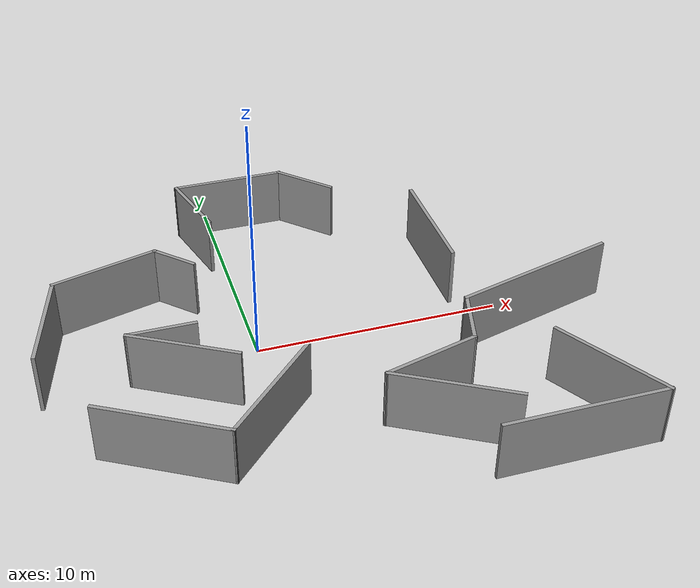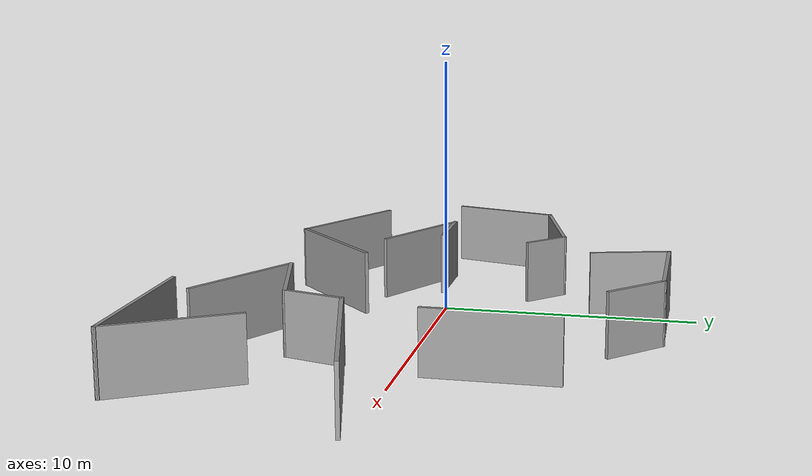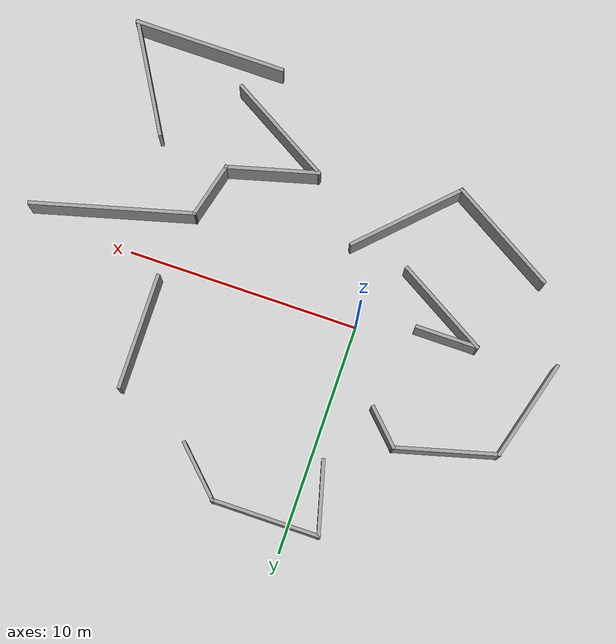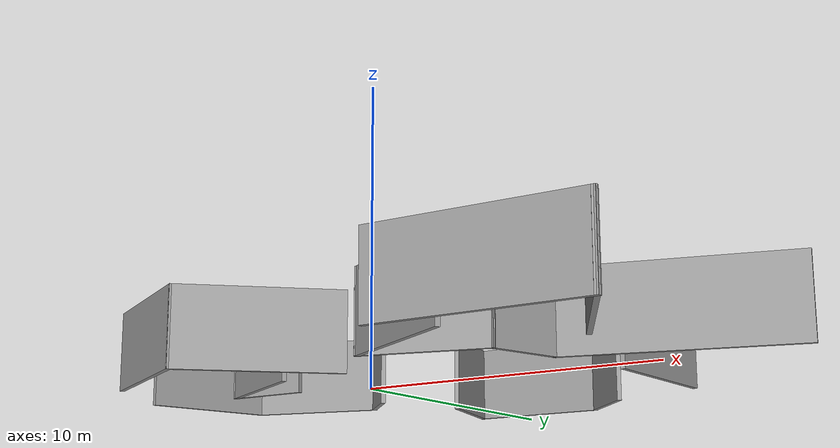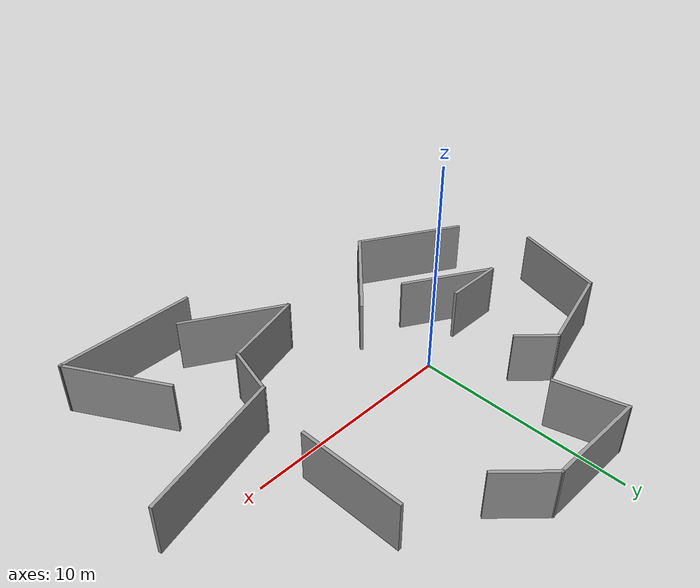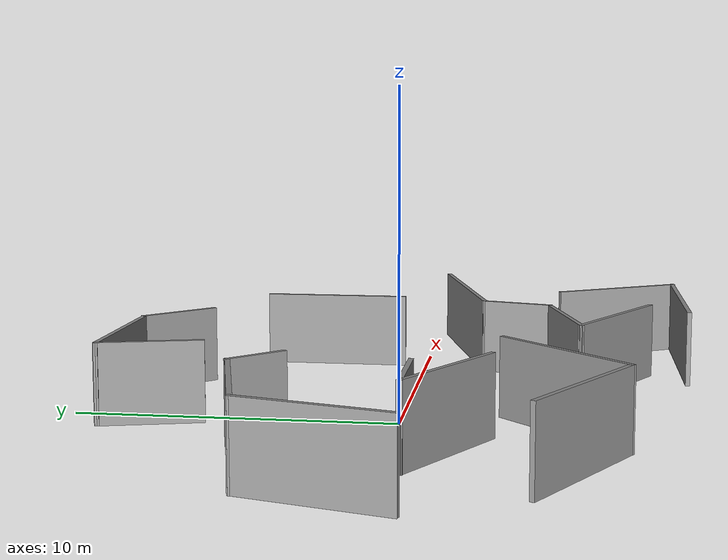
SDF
<?xml version='1.0'?>
<sdf version='1.7'>
  <model name='khong_gian_gazebo'>
    <pose>3.00618 -0.093238 0 0 -0 0</pose>
    <link name='Wall_0'>
      <collision name='Wall_0_Collision'>
        <geometry>
          <box>
            <size>5.25 0.15 2.5</size>
          </box>
        </geometry>
        <pose>0 0 1.25 0 -0 0</pose>
      </collision>
      <visual name='Wall_0_Visual'>
        <pose>0 0 1.25 0 -0 0</pose>
        <geometry>
          <box>
            <size>5.25 0.15 2.5</size>
          </box>
        </geometry>
        <material>
          <script>
            <uri>file://media/materials/scripts/gazebo.material</uri>
            <name>Gazebo/Grey</name>
          </script>
          <ambient>1 1 1 1</ambient>
        </material>
        <meta>
          <layer>0</layer>
        </meta>
      </visual>
      <pose>-3.5793 -4.72989 0 0 -0 -2.35619</pose>
    </link>
    <link name='Wall_1'>
      <collision name='Wall_1_Collision'>
        <geometry>
          <box>
            <size>5.25 0.15 2.5</size>
          </box>
        </geometry>
        <pose>0 0 1.25 0 -0 0</pose>
      </collision>
      <visual name='Wall_1_Visual'>
        <pose>0 0 1.25 0 -0 0</pose>
        <geometry>
          <box>
            <size>5.25 0.15 2.5</size>
          </box>
        </geometry>
        <material>
          <script>
            <uri>file://media/materials/scripts/gazebo.material</uri>
            <name>Gazebo/Grey</name>
          </script>
          <ambient>1 1 1 1</ambient>
        </material>
        <meta>
          <layer>0</layer>
        </meta>
      </visual>
      <pose>-7.59079 -5.25801 0 0 -0 2.61799</pose>
    </link>
    <link name='Wall_10'>
      <collision name='Wall_10_Collision'>
        <geometry>
          <box>
            <size>5 0.15 2.5</size>
          </box>
        </geometry>
        <pose>0 0 1.25 0 -0 0</pose>
      </collision>
      <visual name='Wall_10_Visual'>
        <pose>0 0 1.25 0 -0 0</pose>
        <geometry>
          <box>
            <size>5 0.15 2.5</size>
          </box>
        </geometry>
        <material>
          <script>
            <uri>file://media/materials/scripts/gazebo.material</uri>
            <name>Gazebo/Grey</name>
          </script>
          <ambient>1 1 1 1</ambient>
        </material>
        <meta>
          <layer>0</layer>
        </meta>
      </visual>
      <pose>5.37652 3.34963 0 0 -0 1.5708</pose>
    </link>
    <link name='Wall_12'>
      <collision name='Wall_12_Collision'>
        <geometry>
          <box>
            <size>2.75 0.15 2.5</size>
          </box>
        </geometry>
        <pose>0 0 1.25 0 -0 0</pose>
      </collision>
      <visual name='Wall_12_Visual'>
        <pose>0 0 1.25 0 -0 0</pose>
        <geometry>
          <box>
            <size>2.75 0.15 2.5</size>
          </box>
        </geometry>
        <material>
          <script>
            <uri>file://media/materials/scripts/gazebo.material</uri>
            <name>Gazebo/Grey</name>
          </script>
          <ambient>1 1 1 1</ambient>
        </material>
        <meta>
          <layer>0</layer>
        </meta>
      </visual>
      <pose>1.17273 7.99661 0 0 -0 2.35619</pose>
    </link>
    <link name='Wall_13'>
      <collision name='Wall_13_Collision'>
        <geometry>
          <box>
            <size>4.75 0.15 2.5</size>
          </box>
        </geometry>
        <pose>0 0 1.25 0 -0 0</pose>
      </collision>
      <visual name='Wall_13_Visual'>
        <pose>0 0 1.25 0 -0 0</pose>
        <geometry>
          <box>
            <size>4.75 0.15 2.5</size>
          </box>
        </geometry>
        <material>
          <script>
            <uri>file://media/materials/scripts/gazebo.material</uri>
            <name>Gazebo/Grey</name>
          </script>
          <ambient>1 1 1 1</ambient>
        </material>
        <meta>
          <layer>0</layer>
        </meta>
      </visual>
      <pose>-2.04651 8.91585 0 0 -0 3.14159</pose>
    </link>
    <link name='Wall_14'>
      <collision name='Wall_14_Collision'>
        <geometry>
          <box>
            <size>3.25 0.15 2.5</size>
          </box>
        </geometry>
        <pose>0 0 1.25 0 -0 0</pose>
      </collision>
      <visual name='Wall_14_Visual'>
        <pose>0 0 1.25 0 -0 0</pose>
        <geometry>
          <box>
            <size>3.25 0.15 2.5</size>
          </box>
        </geometry>
        <material>
          <script>
            <uri>file://media/materials/scripts/gazebo.material</uri>
            <name>Gazebo/Grey</name>
          </script>
          <ambient>1 1 1 1</ambient>
        </material>
        <meta>
          <layer>0</layer>
        </meta>
      </visual>
      <pose>-3.94534 7.41866 0 0 -0 -1.309</pose>
    </link>
    <link name='Wall_16'>
      <collision name='Wall_16_Collision'>
        <geometry>
          <box>
            <size>7 0.15 2.5</size>
          </box>
        </geometry>
        <pose>0 0 1.25 0 -0 0</pose>
      </collision>
      <visual name='Wall_16_Visual'>
        <pose>0 0 1.25 0 -0 0</pose>
        <geometry>
          <box>
            <size>7 0.15 2.5</size>
          </box>
        </geometry>
        <material>
          <script>
            <uri>file://media/materials/scripts/gazebo.material</uri>
            <name>Gazebo/Grey</name>
          </script>
          <ambient>1 1 1 1</ambient>
        </material>
        <meta>
          <layer>0</layer>
        </meta>
      </visual>
      <pose>8.10531 -1.14149 0 0 -0 -2.87979</pose>
    </link>
    <link name='Wall_17'>
      <collision name='Wall_17_Collision'>
        <geometry>
          <box>
            <size>2.5 0.15 2.5</size>
          </box>
        </geometry>
        <pose>0 0 1.25 0 -0 0</pose>
      </collision>
      <visual name='Wall_17_Visual'>
        <pose>0 0 1.25 0 -0 0</pose>
        <geometry>
          <box>
            <size>2.5 0.15 2.5</size>
          </box>
        </geometry>
        <material>
          <script>
            <uri>file://media/materials/scripts/gazebo.material</uri>
            <name>Gazebo/Grey</name>
          </script>
          <ambient>1 1 1 1</ambient>
        </material>
        <meta>
          <layer>0</layer>
        </meta>
      </visual>
      <pose>4.4929 -3.16291 0 0 -0 -1.8326</pose>
    </link>
    <link name='Wall_18'>
      <collision name='Wall_18_Collision'>
        <geometry>
          <box>
            <size>4 0.15 2.5</size>
          </box>
        </geometry>
        <pose>0 0 1.25 0 -0 0</pose>
      </collision>
      <visual name='Wall_18_Visual'>
        <pose>0 0 1.25 0 -0 0</pose>
        <geometry>
          <box>
            <size>4 0.15 2.5</size>
          </box>
        </geometry>
        <material>
          <script>
            <uri>file://media/materials/scripts/gazebo.material</uri>
            <name>Gazebo/Grey</name>
          </script>
          <ambient>1 1 1 1</ambient>
        </material>
        <meta>
          <layer>0</layer>
        </meta>
      </visual>
      <pose>2.32938 -4.7961 0 0 -0 -2.87979</pose>
    </link>
    <link name='Wall_19'>
      <collision name='Wall_19_Collision'>
        <geometry>
          <box>
            <size>5 0.15 2.5</size>
          </box>
        </geometry>
        <pose>0 0 1.25 0 -0 0</pose>
      </collision>
      <visual name='Wall_19_Visual'>
        <pose>0 0 1.25 0 -0 0</pose>
        <geometry>
          <box>
            <size>5 0.15 2.5</size>
          </box>
        </geometry>
        <material>
          <script>
            <uri>file://media/materials/scripts/gazebo.material</uri>
            <name>Gazebo/Grey</name>
          </script>
          <ambient>1 1 1 1</ambient>
        </material>
        <meta>
          <layer>0</layer>
        </meta>
      </visual>
      <pose>2.57009 -6.50682 0 0 -0 -0.523599</pose>
    </link>
    <link name='Wall_21'>
      <collision name='Wall_21_Collision'>
        <geometry>
          <box>
            <size>5 0.15 2.5</size>
          </box>
        </geometry>
        <pose>0 0 1.25 0 -0 0</pose>
      </collision>
      <visual name='Wall_21_Visual'>
        <pose>0 0 1.25 0 -0 0</pose>
        <geometry>
          <box>
            <size>5 0.15 2.5</size>
          </box>
        </geometry>
        <material>
          <script>
            <uri>file://media/materials/scripts/gazebo.material</uri>
            <name>Gazebo/Grey</name>
          </script>
          <ambient>1 1 1 1</ambient>
        </material>
        <meta>
          <layer>0</layer>
        </meta>
      </visual>
      <pose>8.4626 -6.81935 0 0 -0 -1.0472</pose>
    </link>
    <link name='Wall_22'>
      <collision name='Wall_22_Collision'>
        <geometry>
          <box>
            <size>6.5 0.15 2.5</size>
          </box>
        </geometry>
        <pose>0 0 1.25 0 -0 0</pose>
      </collision>
      <visual name='Wall_22_Visual'>
        <pose>0 0 1.25 0 -0 0</pose>
        <geometry>
          <box>
            <size>6.5 0.15 2.5</size>
          </box>
        </geometry>
        <material>
          <script>
            <uri>file://media/materials/scripts/gazebo.material</uri>
            <name>Gazebo/Grey</name>
          </script>
          <ambient>1 1 1 1</ambient>
        </material>
        <meta>
          <layer>0</layer>
        </meta>
      </visual>
      <pose>6.5001 -8.91946 0 0 -0 3.14159</pose>
    </link>
    <link name='Wall_3'>
      <collision name='Wall_3_Collision'>
        <geometry>
          <box>
            <size>4.5 0.15 2.5</size>
          </box>
        </geometry>
        <pose>0 0 1.25 0 -0 0</pose>
      </collision>
      <visual name='Wall_3_Visual'>
        <pose>0 0 1.25 0 -0 0</pose>
        <geometry>
          <box>
            <size>4.5 0.15 2.5</size>
          </box>
        </geometry>
        <material>
          <script>
            <uri>file://media/materials/scripts/gazebo.material</uri>
            <name>Gazebo/Grey</name>
          </script>
          <ambient>1 1 1 1</ambient>
        </material>
        <meta>
          <layer>0</layer>
        </meta>
      </visual>
      <pose>-6.15357 -1.61689 0 0 -0 2.61799</pose>
    </link>
    <link name='Wall_4'>
      <collision name='Wall_4_Collision'>
        <geometry>
          <box>
            <size>2.75 0.15 2.5</size>
          </box>
        </geometry>
        <pose>0 0 1.25 0 -0 0</pose>
      </collision>
      <visual name='Wall_4_Visual'>
        <pose>0 0 1.25 0 -0 0</pose>
        <geometry>
          <box>
            <size>2.75 0.15 2.5</size>
          </box>
        </geometry>
        <material>
          <script>
            <uri>file://media/materials/scripts/gazebo.material</uri>
            <name>Gazebo/Grey</name>
          </script>
          <ambient>1 1 1 1</ambient>
        </material>
        <meta>
          <layer>0</layer>
        </meta>
      </visual>
      <pose>-6.73717 -0.529392 0 0 -0 0</pose>
    </link>
    <link name='Wall_6'>
      <collision name='Wall_6_Collision'>
        <geometry>
          <box>
            <size>2 0.15 2.5</size>
          </box>
        </geometry>
        <pose>0 0 1.25 0 -0 0</pose>
      </collision>
      <visual name='Wall_6_Visual'>
        <pose>0 0 1.25 0 -0 0</pose>
        <geometry>
          <box>
            <size>2 0.15 2.5</size>
          </box>
        </geometry>
        <material>
          <script>
            <uri>file://media/materials/scripts/gazebo.material</uri>
            <name>Gazebo/Grey</name>
          </script>
          <ambient>1 1 1 1</ambient>
        </material>
        <meta>
          <layer>0</layer>
        </meta>
      </visual>
      <pose>-5.43189 3.8455 0 0 -0 2.35619</pose>
    </link>
    <link name='Wall_7'>
      <collision name='Wall_7_Collision'>
        <geometry>
          <box>
            <size>4.5 0.15 2.5</size>
          </box>
        </geometry>
        <pose>0 0 1.25 0 -0 0</pose>
      </collision>
      <visual name='Wall_7_Visual'>
        <pose>0 0 1.25 0 -0 0</pose>
        <geometry>
          <box>
            <size>4.5 0.15 2.5</size>
          </box>
        </geometry>
        <material>
          <script>
            <uri>file://media/materials/scripts/gazebo.material</uri>
            <name>Gazebo/Grey</name>
          </script>
          <ambient>1 1 1 1</ambient>
        </material>
        <meta>
          <layer>0</layer>
        </meta>
      </visual>
      <pose>-8.18685 3.93664 0 0 -0 -2.87979</pose>
    </link>
    <link name='Wall_8'>
      <collision name='Wall_8_Collision'>
        <geometry>
          <box>
            <size>4.5 0.15 2.5</size>
          </box>
        </geometry>
        <pose>0 0 1.25 0 -0 0</pose>
      </collision>
      <visual name='Wall_8_Visual'>
        <pose>0 0 1.25 0 -0 0</pose>
        <geometry>
          <box>
            <size>4.5 0.15 2.5</size>
          </box>
        </geometry>
        <material>
          <script>
            <uri>file://media/materials/scripts/gazebo.material</uri>
            <name>Gazebo/Grey</name>
          </script>
          <ambient>1 1 1 1</ambient>
        </material>
        <meta>
          <layer>0</layer>
        </meta>
      </visual>
      <pose>-10.8507 1.27282 0 0 -0 -1.8326</pose>
    </link>
    <static>1</static>
  </model>
</sdf>
